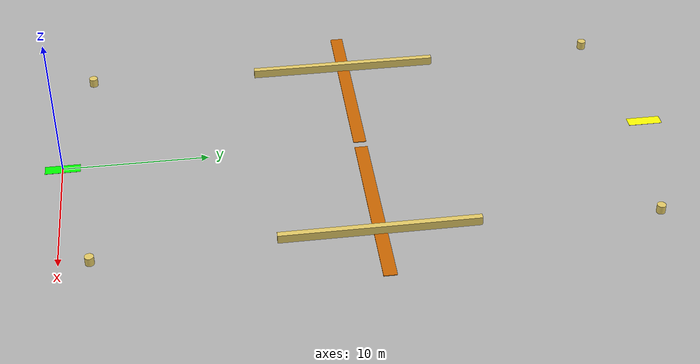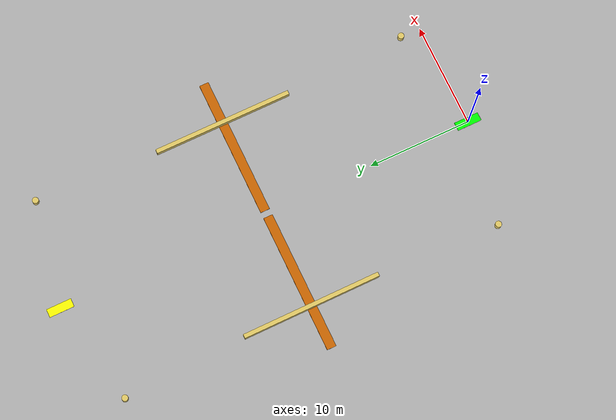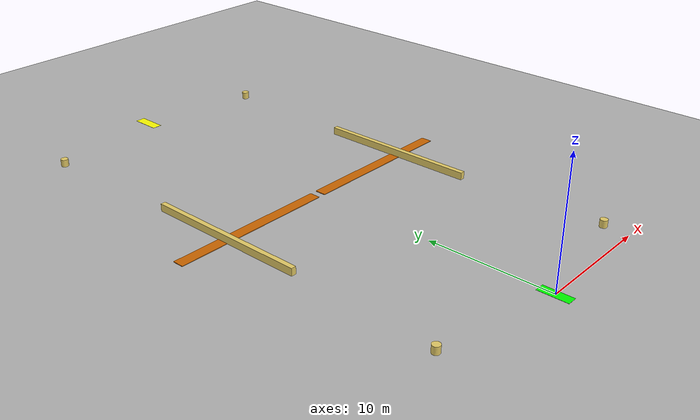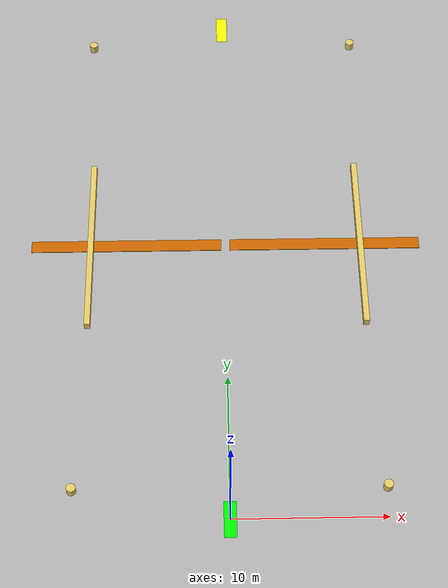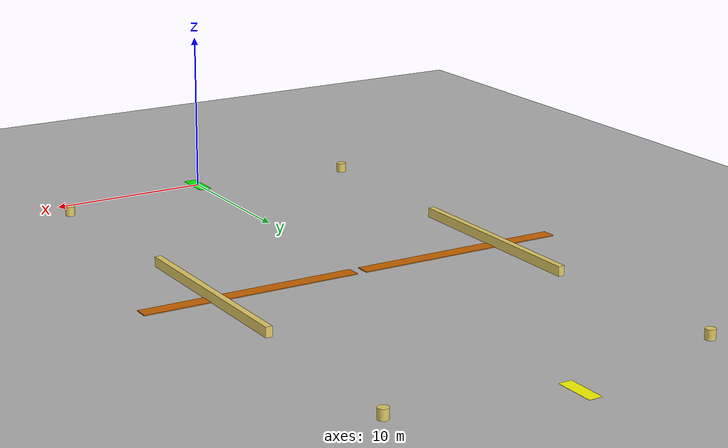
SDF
<?xml version="1.0" ?>
<!--
Speed Course World - 135' x 47' (41.15m x 14.33m)
36" wide path, U-shaped with 3 laps
Curves: 6', 10', 20', 30', 40', 50', 55.3', 60' radius sections
-->
<sdf version="1.8">
  <world name="speed_course">
    <physics type="ode">
      <max_step_size>0.001</max_step_size>
      <real_time_factor>1.0</real_time_factor>
      <ode>
        <solver>
          <type>quick</type>
          <iters>50</iters>
          <sor>1.3</sor>
        </solver>
        <constraints>
          <cfm>1e-5</cfm>
          <erp>0.2</erp>
        </constraints>
      </ode>
    </physics>

    <light name="sun" type="directional">
      <cast_shadows>true</cast_shadows>
      <pose>15 10 20 0 0 0</pose>
      <diffuse>0.8 0.8 0.8 1</diffuse>
      <specular>0.2 0.2 0.2 1</specular>
      <attenuation>
        <range>1000</range>
        <constant>0.9</constant>
        <linear>0.01</linear>
        <quadratic>0.001</quadratic>
      </attenuation>
      <direction>-0.5 0.1 -0.9</direction>
    </light>

    <!-- Ground Plane -->
    <model name="ground">
      <static>true</static>
      <link name="link">
        <collision name="collision">
          <geometry>
            <plane>
              <normal>0 0 1</normal>
              <size>50 25</size>
            </plane>
          </geometry>
          <surface>
            <friction>
              <ode>
                <mu>0.7</mu>
                <mu2>0.7</mu2>
              </ode>
            </friction>
          </surface>
        </collision>
        <visual name="visual">
          <geometry>
            <plane>
              <normal>0 0 1</normal>
              <size>50 25</size>
            </plane>
          </geometry>
          <material>
            <ambient>0.7 0.7 0.7 1</ambient>
            <diffuse>0.7 0.7 0.7 1</diffuse>
          </material>
        </visual>
      </link>
    </model>

    <!-- ==================== START/FINISH ZONES ==================== -->

    <!-- START ZONE (Green) - 32" wide, at Y=0 -->
    <model name="start_zone">
      <static>true</static>
      <pose>0 0 0 0 0 0</pose>
      <link name="link">
        <visual name="visual">
          <geometry><box><size>0.81 2.4 0.01</size></box></geometry>
          <material>
            <ambient>0 1 0 1</ambient>
            <diffuse>0 1 0 1</diffuse>
          </material>
        </visual>
      </link>
    </model>

    <!-- FINISH ZONE (Yellow) - 32" wide, at Y=41.15m (135 feet) -->
    <model name="finish_zone">
      <static>true</static>
      <pose>0 41.15 0 0 0 0</pose>
      <link name="link">
        <visual name="visual">
          <geometry><box><size>0.81 2.4 0.01</size></box></geometry>
          <material>
            <ambient>1 1 0 1</ambient>
            <diffuse>1 1 0 1</diffuse>
          </material>
        </visual>
      </link>
    </model>

    <!-- ==================== COURSE STRUCTURE ==================== -->

    <!-- ========== BOTTOM LEFT TURN (Outer radius curves: 55.3' to 25.3') ========== -->
    <!-- This is the tight switchback at Y=0; creates the U-turn -->

    <!-- Left outer wall - large radius curve transitioning through 55.3', 45.3', 35.3', 25.3' -->
    <!-- Approximated as concentric circle sections -->
    <model name="bottom_left_outer_r55">
      <static>true</static>
      <pose>-8.4 2.0 0 0 0 0</pose>
      <link name="link">
        <collision name="collision">
          <geometry><cylinder><radius>16.85</radius><length>0.05</length></cylinder></geometry>
        </collision>
      </link>
    </model>

    <model name="bottom_left_inner_r45">
      <static>true</static>
      <pose>-8.4 2.0 0 0 0 0</pose>
      <link name="link">
        <collision name="collision">
          <geometry><cylinder><radius>15.95</radius><length>0.05</length></cylinder></geometry>
        </collision>
      </link>
    </model>

    <!-- ========== STRAIGHT LEFT SECTION (44 feet = 13.41m) ========== -->
    <!-- Runs from bottom left curve to top left curve, 36" wide path -->
    <model name="left_straight_section">
      <static>true</static>
      <pose>-7.0 20.6 0 0 0 0</pose>
      <link name="link">
        <collision name="collision">
          <geometry><box><size>13.41 0.9 0.05</size></box></geometry>
        </collision>
        <visual name="visual">
          <geometry><box><size>13.41 0.9 0.05</size></box></geometry>
          <material>
            <ambient>0.8 0.4 0 1</ambient>
            <diffuse>0.8 0.4 0 1</diffuse>
          </material>
        </visual>
      </link>
    </model>

    <!-- ========== TOP LEFT TURN (Tight curves: 10', 6' radii) ========== -->
    <!-- Innermost switchback to reverse direction -->
    <model name="top_left_tight_outer_r10">
      <static>true</static>
      <pose>-8.4 39.2 0 0 0 0</pose>
      <link name="link">
        <collision name="collision">
          <geometry><cylinder><radius>3.05</radius><length>0.05</length></cylinder></geometry>
        </collision>
      </link>
    </model>

    <model name="top_left_tight_inner_r6">
      <static>true</static>
      <pose>-8.4 39.2 0 0 0 0</pose>
      <link name="link">
        <collision name="collision">
          <geometry><cylinder><radius>2.15</radius><length>0.05</length></cylinder></geometry>
        </collision>
      </link>
    </model>

    <!-- ========== BOTTOM RIGHT TURN (Mirror of left) ========== -->
    <model name="bottom_right_outer_r55">
      <static>true</static>
      <pose>8.4 2.0 0 0 0 0</pose>
      <link name="link">
        <collision name="collision">
          <geometry><cylinder><radius>16.85</radius><length>0.05</length></cylinder></geometry>
        </collision>
      </link>
    </model>

    <model name="bottom_right_inner_r45">
      <static>true</static>
      <pose>8.4 2.0 0 0 0 0</pose>
      <link name="link">
        <collision name="collision">
          <geometry><cylinder><radius>15.95</radius><length>0.05</length></cylinder></geometry>
        </collision>
      </link>
    </model>

    <!-- ========== STRAIGHT RIGHT SECTION (44 feet = 13.41m) ========== -->
    <model name="right_straight_section">
      <static>true</static>
      <pose>7.0 20.6 0 0 0 0</pose>
      <link name="link">
        <collision name="collision">
          <geometry><box><size>13.41 0.9 0.05</size></box></geometry>
        </collision>
        <visual name="visual">
          <geometry><box><size>13.41 0.9 0.05</size></box></geometry>
          <material>
            <ambient>0.8 0.4 0 1</ambient>
            <diffuse>0.8 0.4 0 1</diffuse>
          </material>
        </visual>
      </link>
    </model>

    <!-- ========== TOP RIGHT TURN ========== -->
    <model name="top_right_tight_outer_r10">
      <static>true</static>
      <pose>8.4 39.2 0 0 0 0</pose>
      <link name="link">
        <collision name="collision">
          <geometry><cylinder><radius>3.05</radius><length>0.05</length></cylinder></geometry>
        </collision>
      </link>
    </model>

    <model name="top_right_tight_inner_r6">
      <static>true</static>
      <pose>8.4 39.2 0 0 0 0</pose>
      <link name="link">
        <collision name="collision">
          <geometry><cylinder><radius>2.15</radius><length>0.05</length></cylinder></geometry>
        </collision>
      </link>
    </model>

    <!-- ==================== HAY BALE BARRIERS (lining both sides) ==================== -->

    <!-- Left side hay bales - outer perimeter -->
    <model name="haybale_left_outer">
      <static>true</static>
      <pose>-9.5 20.6 0.3 0 0 0</pose>
      <link name="link">
        <collision name="collision">
          <geometry><box><size>0.4 13.41 0.6</size></box></geometry>
          <surface>
            <friction>
              <ode>
                <mu>0.6</mu>
                <mu2>0.6</mu2>
              </ode>
            </friction>
          </surface>
        </collision>
        <visual name="visual">
          <geometry><box><size>0.4 13.41 0.6</size></box></geometry>
          <material>
            <ambient>0.9 0.8 0.4 1</ambient>
            <diffuse>0.9 0.8 0.4 1</diffuse>
          </material>
        </visual>
      </link>
    </model>

    <!-- Right side hay bales - outer perimeter -->
    <model name="haybale_right_outer">
      <static>true</static>
      <pose>9.5 20.6 0.3 0 0 0</pose>
      <link name="link">
        <collision name="collision">
          <geometry><box><size>0.4 13.41 0.6</size></box></geometry>
          <surface>
            <friction>
              <ode>
                <mu>0.6</mu>
                <mu2>0.6</mu2>
              </ode>
            </friction>
          </surface>
        </collision>
        <visual name="visual">
          <geometry><box><size>0.4 13.41 0.6</size></box></geometry>
          <material>
            <ambient>0.9 0.8 0.4 1</ambient>
            <diffuse>0.9 0.8 0.4 1</diffuse>
          </material>
        </visual>
      </link>
    </model>

    <!-- Left bottom turn hay bales -->
    <model name="haybale_left_bottom">
      <static>true</static>
      <pose>-10.0 2.0 0.3 0 0 0</pose>
      <link name="link">
        <collision name="collision">
          <geometry><cylinder><radius>0.3</radius><length>0.6</length></cylinder></geometry>
          <surface>
            <friction>
              <ode>
                <mu>0.6</mu>
                <mu2>0.6</mu2>
              </ode>
            </friction>
          </surface>
        </collision>
        <visual name="visual">
          <geometry><cylinder><radius>0.3</radius><length>0.6</length></cylinder></geometry>
          <material>
            <ambient>0.9 0.8 0.4 1</ambient>
            <diffuse>0.9 0.8 0.4 1</diffuse>
          </material>
        </visual>
      </link>
    </model>

    <!-- Right bottom turn hay bales -->
    <model name="haybale_right_bottom">
      <static>true</static>
      <pose>10.0 2.0 0.3 0 0 0</pose>
      <link name="link">
        <collision name="collision">
          <geometry><cylinder><radius>0.3</radius><length>0.6</length></cylinder></geometry>
          <surface>
            <friction>
              <ode>
                <mu>0.6</mu>
                <mu2>0.6</mu2>
              </ode>
            </friction>
          </surface>
        </collision>
        <visual name="visual">
          <geometry><cylinder><radius>0.3</radius><length>0.6</length></cylinder></geometry>
          <material>
            <ambient>0.9 0.8 0.4 1</ambient>
            <diffuse>0.9 0.8 0.4 1</diffuse>
          </material>
        </visual>
      </link>
    </model>

    <!-- Left top turn hay bales -->
    <model name="haybale_left_top">
      <static>true</static>
      <pose>-10.0 39.2 0.3 0 0 0</pose>
      <link name="link">
        <collision name="collision">
          <geometry><cylinder><radius>0.3</radius><length>0.6</length></cylinder></geometry>
          <surface>
            <friction>
              <ode>
                <mu>0.6</mu>
                <mu2>0.6</mu2>
              </ode>
            </friction>
          </surface>
        </collision>
        <visual name="visual">
          <geometry><cylinder><radius>0.3</radius><length>0.6</length></cylinder></geometry>
          <material>
            <ambient>0.9 0.8 0.4 1</ambient>
            <diffuse>0.9 0.8 0.4 1</diffuse>
          </material>
        </visual>
      </link>
    </model>

    <!-- Right top turn hay bales -->
    <model name="haybale_right_top">
      <static>true</static>
      <pose>10.0 39.2 0.3 0 0 0</pose>
      <link name="link">
        <collision name="collision">
          <geometry><cylinder><radius>0.3</radius><length>0.6</length></cylinder></geometry>
          <surface>
            <friction>
              <ode>
                <mu>0.6</mu>
                <mu2>0.6</mu2>
              </ode>
            </friction>
          </surface>
        </collision>
        <visual name="visual">
          <geometry><cylinder><radius>0.3</radius><length>0.6</length></cylinder></geometry>
          <material>
            <ambient>0.9 0.8 0.4 1</ambient>
            <diffuse>0.9 0.8 0.4 1</diffuse>
          </material>
        </visual>
      </link>
    </model>

  </world>
</sdf>
